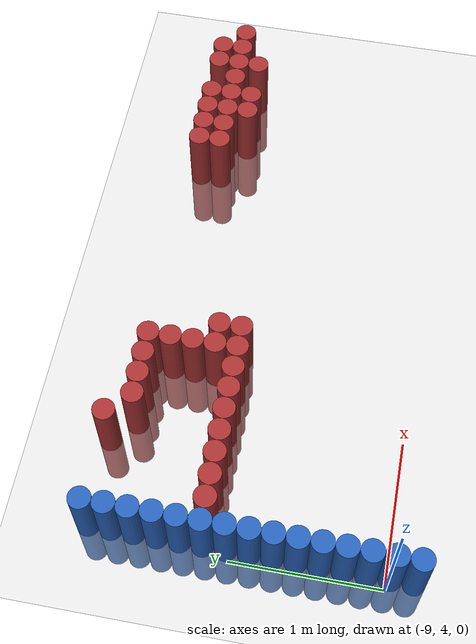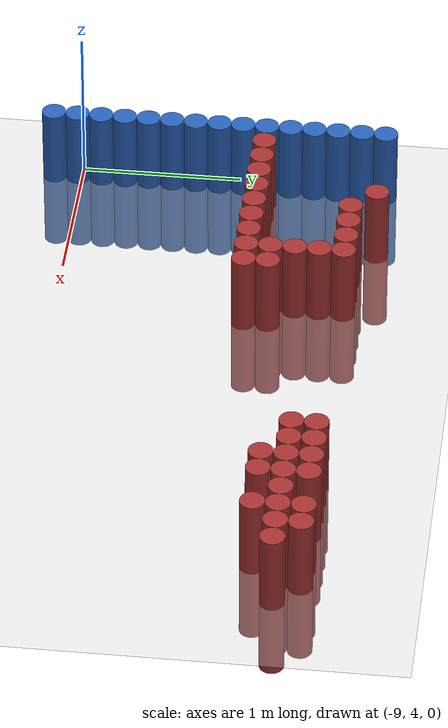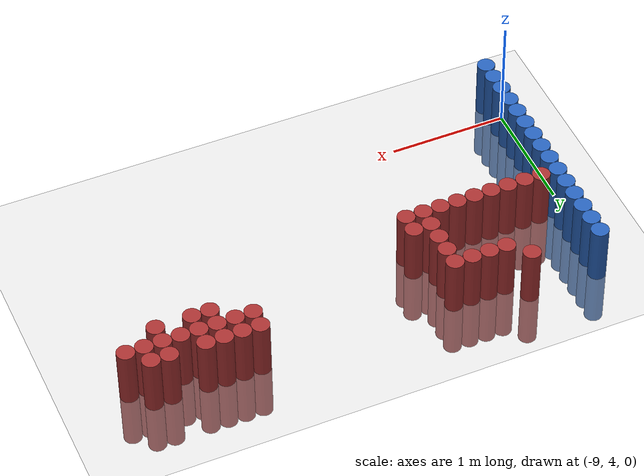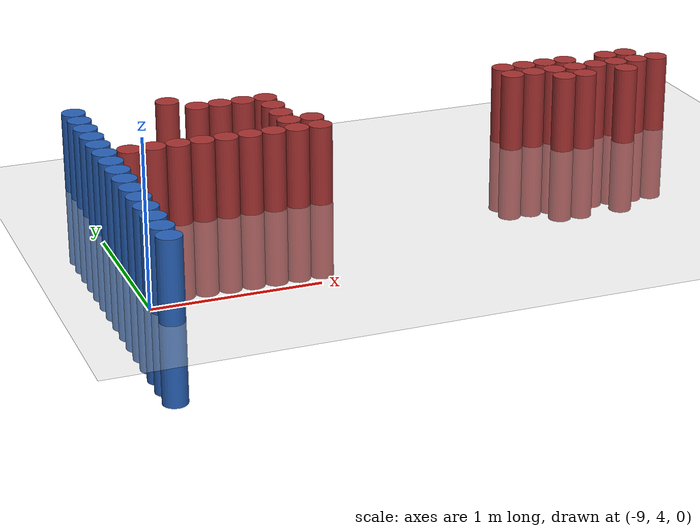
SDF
<sdf version="1.6">
 <world name="default">
  <model name="ground_plane">
   <static>1</static>
   <link name="link">
    <collision name="collision">
     <geometry><plane><normal>0 0 1</normal><size>100 100</size></plane></geometry>
     <surface><friction><ode><mu>100</mu><mu2>50</mu2></ode></friction></surface>
    </collision>
    <visual name="visual">
     <cast_shadows>0</cast_shadows>
     <geometry><plane><normal>0 0 1</normal><size>100 100</size></plane></geometry>
     <material>
      <script><uri>file://media/materials/scripts/gazebo.material</uri><name>Gazebo/Grey</name></script>
     </material>
    </visual>
   </link>
  </model>
  <model name="unit_cylinder_108">
   <static>1</static>
   <pose>-8.925000 3.825000 0.000000 0.000000 0.000000 0.000000</pose>
   <link name="link">
    <inertial>
     <mass>1</mass>
     <inertia><ixx>0.145833</ixx><ixy>0</ixy><ixz>0</ixz><iyy>0.145833</iyy><iyz>0</iyz><izz>0.125</izz></inertia>
    </inertial>
    <collision name="collision">
     <geometry><cylinder><radius>0.075000</radius><length>1</length></cylinder></geometry>
    </collision>
    <visual name="visual">
     <geometry><cylinder><radius>0.075000</radius><length>1</length></cylinder></geometry>
     <material>
      <ambient>0.152000 0.379000 0.720000 1</ambient>
      <diffuse>0.152000 0.379000 0.720000 1</diffuse>
     </material>
     <material>
      <script><name>Gazebo/Grey</name><uri>file://media/materials/scripts/gazebo.material</uri></script>
     </material>
    </visual>
   </link>
  </model>
  <model name="unit_cylinder_110">
   <static>1</static>
   <pose>-8.925000 3.975000 0.000000 0.000000 0.000000 0.000000</pose>
   <link name="link">
    <inertial>
     <mass>1</mass>
     <inertia><ixx>0.145833</ixx><ixy>0</ixy><ixz>0</ixz><iyy>0.145833</iyy><iyz>0</iyz><izz>0.125</izz></inertia>
    </inertial>
    <collision name="collision">
     <geometry><cylinder><radius>0.075000</radius><length>1</length></cylinder></geometry>
    </collision>
    <visual name="visual">
     <geometry><cylinder><radius>0.075000</radius><length>1</length></cylinder></geometry>
     <material>
      <ambient>0.152000 0.379000 0.720000 1</ambient>
      <diffuse>0.152000 0.379000 0.720000 1</diffuse>
     </material>
     <material>
      <script><name>Gazebo/Grey</name><uri>file://media/materials/scripts/gazebo.material</uri></script>
     </material>
    </visual>
   </link>
  </model>
  <model name="unit_cylinder_112">
   <static>1</static>
   <pose>-8.925000 4.125000 0.000000 0.000000 0.000000 0.000000</pose>
   <link name="link">
    <inertial>
     <mass>1</mass>
     <inertia><ixx>0.145833</ixx><ixy>0</ixy><ixz>0</ixz><iyy>0.145833</iyy><iyz>0</iyz><izz>0.125</izz></inertia>
    </inertial>
    <collision name="collision">
     <geometry><cylinder><radius>0.075000</radius><length>1</length></cylinder></geometry>
    </collision>
    <visual name="visual">
     <geometry><cylinder><radius>0.075000</radius><length>1</length></cylinder></geometry>
     <material>
      <ambient>0.152000 0.379000 0.720000 1</ambient>
      <diffuse>0.152000 0.379000 0.720000 1</diffuse>
     </material>
     <material>
      <script><name>Gazebo/Grey</name><uri>file://media/materials/scripts/gazebo.material</uri></script>
     </material>
    </visual>
   </link>
  </model>
  <model name="unit_cylinder_114">
   <static>1</static>
   <pose>-8.925000 4.275000 0.000000 0.000000 0.000000 0.000000</pose>
   <link name="link">
    <inertial>
     <mass>1</mass>
     <inertia><ixx>0.145833</ixx><ixy>0</ixy><ixz>0</ixz><iyy>0.145833</iyy><iyz>0</iyz><izz>0.125</izz></inertia>
    </inertial>
    <collision name="collision">
     <geometry><cylinder><radius>0.075000</radius><length>1</length></cylinder></geometry>
    </collision>
    <visual name="visual">
     <geometry><cylinder><radius>0.075000</radius><length>1</length></cylinder></geometry>
     <material>
      <ambient>0.152000 0.379000 0.720000 1</ambient>
      <diffuse>0.152000 0.379000 0.720000 1</diffuse>
     </material>
     <material>
      <script><name>Gazebo/Grey</name><uri>file://media/materials/scripts/gazebo.material</uri></script>
     </material>
    </visual>
   </link>
  </model>
  <model name="unit_cylinder_116">
   <static>1</static>
   <pose>-8.925000 4.425000 0.000000 0.000000 0.000000 0.000000</pose>
   <link name="link">
    <inertial>
     <mass>1</mass>
     <inertia><ixx>0.145833</ixx><ixy>0</ixy><ixz>0</ixz><iyy>0.145833</iyy><iyz>0</iyz><izz>0.125</izz></inertia>
    </inertial>
    <collision name="collision">
     <geometry><cylinder><radius>0.075000</radius><length>1</length></cylinder></geometry>
    </collision>
    <visual name="visual">
     <geometry><cylinder><radius>0.075000</radius><length>1</length></cylinder></geometry>
     <material>
      <ambient>0.152000 0.379000 0.720000 1</ambient>
      <diffuse>0.152000 0.379000 0.720000 1</diffuse>
     </material>
     <material>
      <script><name>Gazebo/Grey</name><uri>file://media/materials/scripts/gazebo.material</uri></script>
     </material>
    </visual>
   </link>
  </model>
  <model name="unit_cylinder_118">
   <static>1</static>
   <pose>-8.925000 4.575000 0.000000 0.000000 0.000000 0.000000</pose>
   <link name="link">
    <inertial>
     <mass>1</mass>
     <inertia><ixx>0.145833</ixx><ixy>0</ixy><ixz>0</ixz><iyy>0.145833</iyy><iyz>0</iyz><izz>0.125</izz></inertia>
    </inertial>
    <collision name="collision">
     <geometry><cylinder><radius>0.075000</radius><length>1</length></cylinder></geometry>
    </collision>
    <visual name="visual">
     <geometry><cylinder><radius>0.075000</radius><length>1</length></cylinder></geometry>
     <material>
      <ambient>0.152000 0.379000 0.720000 1</ambient>
      <diffuse>0.152000 0.379000 0.720000 1</diffuse>
     </material>
     <material>
      <script><name>Gazebo/Grey</name><uri>file://media/materials/scripts/gazebo.material</uri></script>
     </material>
    </visual>
   </link>
  </model>
  <model name="unit_cylinder_120">
   <static>1</static>
   <pose>-8.925000 4.725000 0.000000 0.000000 0.000000 0.000000</pose>
   <link name="link">
    <inertial>
     <mass>1</mass>
     <inertia><ixx>0.145833</ixx><ixy>0</ixy><ixz>0</ixz><iyy>0.145833</iyy><iyz>0</iyz><izz>0.125</izz></inertia>
    </inertial>
    <collision name="collision">
     <geometry><cylinder><radius>0.075000</radius><length>1</length></cylinder></geometry>
    </collision>
    <visual name="visual">
     <geometry><cylinder><radius>0.075000</radius><length>1</length></cylinder></geometry>
     <material>
      <ambient>0.152000 0.379000 0.720000 1</ambient>
      <diffuse>0.152000 0.379000 0.720000 1</diffuse>
     </material>
     <material>
      <script><name>Gazebo/Grey</name><uri>file://media/materials/scripts/gazebo.material</uri></script>
     </material>
    </visual>
   </link>
  </model>
  <model name="unit_cylinder_122">
   <static>1</static>
   <pose>-8.925000 4.875000 0.000000 0.000000 0.000000 0.000000</pose>
   <link name="link">
    <inertial>
     <mass>1</mass>
     <inertia><ixx>0.145833</ixx><ixy>0</ixy><ixz>0</ixz><iyy>0.145833</iyy><iyz>0</iyz><izz>0.125</izz></inertia>
    </inertial>
    <collision name="collision">
     <geometry><cylinder><radius>0.075000</radius><length>1</length></cylinder></geometry>
    </collision>
    <visual name="visual">
     <geometry><cylinder><radius>0.075000</radius><length>1</length></cylinder></geometry>
     <material>
      <ambient>0.152000 0.379000 0.720000 1</ambient>
      <diffuse>0.152000 0.379000 0.720000 1</diffuse>
     </material>
     <material>
      <script><name>Gazebo/Grey</name><uri>file://media/materials/scripts/gazebo.material</uri></script>
     </material>
    </visual>
   </link>
  </model>
  <model name="unit_cylinder_124">
   <static>1</static>
   <pose>-8.925000 5.025000 0.000000 0.000000 0.000000 0.000000</pose>
   <link name="link">
    <inertial>
     <mass>1</mass>
     <inertia><ixx>0.145833</ixx><ixy>0</ixy><ixz>0</ixz><iyy>0.145833</iyy><iyz>0</iyz><izz>0.125</izz></inertia>
    </inertial>
    <collision name="collision">
     <geometry><cylinder><radius>0.075000</radius><length>1</length></cylinder></geometry>
    </collision>
    <visual name="visual">
     <geometry><cylinder><radius>0.075000</radius><length>1</length></cylinder></geometry>
     <material>
      <ambient>0.152000 0.379000 0.720000 1</ambient>
      <diffuse>0.152000 0.379000 0.720000 1</diffuse>
     </material>
     <material>
      <script><name>Gazebo/Grey</name><uri>file://media/materials/scripts/gazebo.material</uri></script>
     </material>
    </visual>
   </link>
  </model>
  <model name="unit_cylinder_125">
   <static>1</static>
   <pose>-8.925000 5.175000 0.000000 0.000000 0.000000 0.000000</pose>
   <link name="link">
    <inertial>
     <mass>1</mass>
     <inertia><ixx>0.145833</ixx><ixy>0</ixy><ixz>0</ixz><iyy>0.145833</iyy><iyz>0</iyz><izz>0.125</izz></inertia>
    </inertial>
    <collision name="collision">
     <geometry><cylinder><radius>0.075000</radius><length>1</length></cylinder></geometry>
    </collision>
    <visual name="visual">
     <geometry><cylinder><radius>0.075000</radius><length>1</length></cylinder></geometry>
     <material>
      <ambient>0.152000 0.379000 0.720000 1</ambient>
      <diffuse>0.152000 0.379000 0.720000 1</diffuse>
     </material>
     <material>
      <script><name>Gazebo/Grey</name><uri>file://media/materials/scripts/gazebo.material</uri></script>
     </material>
    </visual>
   </link>
  </model>
  <model name="unit_cylinder_126">
   <static>1</static>
   <pose>-8.925000 5.325000 0.000000 0.000000 0.000000 0.000000</pose>
   <link name="link">
    <inertial>
     <mass>1</mass>
     <inertia><ixx>0.145833</ixx><ixy>0</ixy><ixz>0</ixz><iyy>0.145833</iyy><iyz>0</iyz><izz>0.125</izz></inertia>
    </inertial>
    <collision name="collision">
     <geometry><cylinder><radius>0.075000</radius><length>1</length></cylinder></geometry>
    </collision>
    <visual name="visual">
     <geometry><cylinder><radius>0.075000</radius><length>1</length></cylinder></geometry>
     <material>
      <ambient>0.152000 0.379000 0.720000 1</ambient>
      <diffuse>0.152000 0.379000 0.720000 1</diffuse>
     </material>
     <material>
      <script><name>Gazebo/Grey</name><uri>file://media/materials/scripts/gazebo.material</uri></script>
     </material>
    </visual>
   </link>
  </model>
  <model name="unit_cylinder_127">
   <static>1</static>
   <pose>-8.925000 5.475000 0.000000 0.000000 0.000000 0.000000</pose>
   <link name="link">
    <inertial>
     <mass>1</mass>
     <inertia><ixx>0.145833</ixx><ixy>0</ixy><ixz>0</ixz><iyy>0.145833</iyy><iyz>0</iyz><izz>0.125</izz></inertia>
    </inertial>
    <collision name="collision">
     <geometry><cylinder><radius>0.075000</radius><length>1</length></cylinder></geometry>
    </collision>
    <visual name="visual">
     <geometry><cylinder><radius>0.075000</radius><length>1</length></cylinder></geometry>
     <material>
      <ambient>0.152000 0.379000 0.720000 1</ambient>
      <diffuse>0.152000 0.379000 0.720000 1</diffuse>
     </material>
     <material>
      <script><name>Gazebo/Grey</name><uri>file://media/materials/scripts/gazebo.material</uri></script>
     </material>
    </visual>
   </link>
  </model>
  <model name="unit_cylinder_128">
   <static>1</static>
   <pose>-8.925000 5.625000 0.000000 0.000000 0.000000 0.000000</pose>
   <link name="link">
    <inertial>
     <mass>1</mass>
     <inertia><ixx>0.145833</ixx><ixy>0</ixy><ixz>0</ixz><iyy>0.145833</iyy><iyz>0</iyz><izz>0.125</izz></inertia>
    </inertial>
    <collision name="collision">
     <geometry><cylinder><radius>0.075000</radius><length>1</length></cylinder></geometry>
    </collision>
    <visual name="visual">
     <geometry><cylinder><radius>0.075000</radius><length>1</length></cylinder></geometry>
     <material>
      <ambient>0.152000 0.379000 0.720000 1</ambient>
      <diffuse>0.152000 0.379000 0.720000 1</diffuse>
     </material>
     <material>
      <script><name>Gazebo/Grey</name><uri>file://media/materials/scripts/gazebo.material</uri></script>
     </material>
    </visual>
   </link>
  </model>
  <model name="unit_cylinder_129">
   <static>1</static>
   <pose>-8.925000 5.775000 0.000000 0.000000 0.000000 0.000000</pose>
   <link name="link">
    <inertial>
     <mass>1</mass>
     <inertia><ixx>0.145833</ixx><ixy>0</ixy><ixz>0</ixz><iyy>0.145833</iyy><iyz>0</iyz><izz>0.125</izz></inertia>
    </inertial>
    <collision name="collision">
     <geometry><cylinder><radius>0.075000</radius><length>1</length></cylinder></geometry>
    </collision>
    <visual name="visual">
     <geometry><cylinder><radius>0.075000</radius><length>1</length></cylinder></geometry>
     <material>
      <ambient>0.152000 0.379000 0.720000 1</ambient>
      <diffuse>0.152000 0.379000 0.720000 1</diffuse>
     </material>
     <material>
      <script><name>Gazebo/Grey</name><uri>file://media/materials/scripts/gazebo.material</uri></script>
     </material>
    </visual>
   </link>
  </model>
  <model name="unit_cylinder_130">
   <static>1</static>
   <pose>-8.925000 5.925000 0.000000 0.000000 0.000000 0.000000</pose>
   <link name="link">
    <inertial>
     <mass>1</mass>
     <inertia><ixx>0.145833</ixx><ixy>0</ixy><ixz>0</ixz><iyy>0.145833</iyy><iyz>0</iyz><izz>0.125</izz></inertia>
    </inertial>
    <collision name="collision">
     <geometry><cylinder><radius>0.075000</radius><length>1</length></cylinder></geometry>
    </collision>
    <visual name="visual">
     <geometry><cylinder><radius>0.075000</radius><length>1</length></cylinder></geometry>
     <material>
      <ambient>0.152000 0.379000 0.720000 1</ambient>
      <diffuse>0.152000 0.379000 0.720000 1</diffuse>
     </material>
     <material>
      <script><name>Gazebo/Grey</name><uri>file://media/materials/scripts/gazebo.material</uri></script>
     </material>
    </visual>
   </link>
  </model>
  <model name="unit_cylinder_155">
   <static>1</static>
   <pose>-8.775000 5.175000 0.000000 0.000000 0.000000 0.000000</pose>
   <link name="link">
    <inertial>
     <mass>1</mass>
     <inertia><ixx>0.145833</ixx><ixy>0</ixy><ixz>0</ixz><iyy>0.145833</iyy><iyz>0</iyz><izz>0.125</izz></inertia>
    </inertial>
    <collision name="collision">
     <geometry><cylinder><radius>0.075000</radius><length>1</length></cylinder></geometry>
    </collision>
    <visual name="visual">
     <geometry><cylinder><radius>0.075000</radius><length>1</length></cylinder></geometry>
     <material>
      <ambient>0.648000 0.192000 0.192000 1</ambient>
      <diffuse>0.648000 0.192000 0.192000 1</diffuse>
     </material>
     <material>
      <script><name>Gazebo/Grey</name><uri>file://media/materials/scripts/gazebo.material</uri></script>
     </material>
    </visual>
   </link>
  </model>
  <model name="unit_cylinder_157">
   <static>1</static>
   <pose>-8.625000 5.175000 0.000000 0.000000 0.000000 0.000000</pose>
   <link name="link">
    <inertial>
     <mass>1</mass>
     <inertia><ixx>0.145833</ixx><ixy>0</ixy><ixz>0</ixz><iyy>0.145833</iyy><iyz>0</iyz><izz>0.125</izz></inertia>
    </inertial>
    <collision name="collision">
     <geometry><cylinder><radius>0.075000</radius><length>1</length></cylinder></geometry>
    </collision>
    <visual name="visual">
     <geometry><cylinder><radius>0.075000</radius><length>1</length></cylinder></geometry>
     <material>
      <ambient>0.648000 0.192000 0.192000 1</ambient>
      <diffuse>0.648000 0.192000 0.192000 1</diffuse>
     </material>
     <material>
      <script><name>Gazebo/Grey</name><uri>file://media/materials/scripts/gazebo.material</uri></script>
     </material>
    </visual>
   </link>
  </model>
  <model name="unit_cylinder_159">
   <static>1</static>
   <pose>-8.475000 5.175000 0.000000 0.000000 0.000000 0.000000</pose>
   <link name="link">
    <inertial>
     <mass>1</mass>
     <inertia><ixx>0.145833</ixx><ixy>0</ixy><ixz>0</ixz><iyy>0.145833</iyy><iyz>0</iyz><izz>0.125</izz></inertia>
    </inertial>
    <collision name="collision">
     <geometry><cylinder><radius>0.075000</radius><length>1</length></cylinder></geometry>
    </collision>
    <visual name="visual">
     <geometry><cylinder><radius>0.075000</radius><length>1</length></cylinder></geometry>
     <material>
      <ambient>0.648000 0.192000 0.192000 1</ambient>
      <diffuse>0.648000 0.192000 0.192000 1</diffuse>
     </material>
     <material>
      <script><name>Gazebo/Grey</name><uri>file://media/materials/scripts/gazebo.material</uri></script>
     </material>
    </visual>
   </link>
  </model>
  <model name="unit_cylinder_161">
   <static>1</static>
   <pose>-8.325000 5.175000 0.000000 0.000000 0.000000 0.000000</pose>
   <link name="link">
    <inertial>
     <mass>1</mass>
     <inertia><ixx>0.145833</ixx><ixy>0</ixy><ixz>0</ixz><iyy>0.145833</iyy><iyz>0</iyz><izz>0.125</izz></inertia>
    </inertial>
    <collision name="collision">
     <geometry><cylinder><radius>0.075000</radius><length>1</length></cylinder></geometry>
    </collision>
    <visual name="visual">
     <geometry><cylinder><radius>0.075000</radius><length>1</length></cylinder></geometry>
     <material>
      <ambient>0.648000 0.192000 0.192000 1</ambient>
      <diffuse>0.648000 0.192000 0.192000 1</diffuse>
     </material>
     <material>
      <script><name>Gazebo/Grey</name><uri>file://media/materials/scripts/gazebo.material</uri></script>
     </material>
    </visual>
   </link>
  </model>
  <model name="unit_cylinder_162">
   <static>1</static>
   <pose>-8.325000 5.925000 0.000000 0.000000 0.000000 0.000000</pose>
   <link name="link">
    <inertial>
     <mass>1</mass>
     <inertia><ixx>0.145833</ixx><ixy>0</ixy><ixz>0</ixz><iyy>0.145833</iyy><iyz>0</iyz><izz>0.125</izz></inertia>
    </inertial>
    <collision name="collision">
     <geometry><cylinder><radius>0.075000</radius><length>1</length></cylinder></geometry>
    </collision>
    <visual name="visual">
     <geometry><cylinder><radius>0.075000</radius><length>1</length></cylinder></geometry>
     <material>
      <ambient>0.648000 0.192000 0.192000 1</ambient>
      <diffuse>0.648000 0.192000 0.192000 1</diffuse>
     </material>
     <material>
      <script><name>Gazebo/Grey</name><uri>file://media/materials/scripts/gazebo.material</uri></script>
     </material>
    </visual>
   </link>
  </model>
  <model name="unit_cylinder_182">
   <static>1</static>
   <pose>-8.175000 5.175000 0.000000 0.000000 0.000000 0.000000</pose>
   <link name="link">
    <inertial>
     <mass>1</mass>
     <inertia><ixx>0.145833</ixx><ixy>0</ixy><ixz>0</ixz><iyy>0.145833</iyy><iyz>0</iyz><izz>0.125</izz></inertia>
    </inertial>
    <collision name="collision">
     <geometry><cylinder><radius>0.075000</radius><length>1</length></cylinder></geometry>
    </collision>
    <visual name="visual">
     <geometry><cylinder><radius>0.075000</radius><length>1</length></cylinder></geometry>
     <material>
      <ambient>0.648000 0.192000 0.192000 1</ambient>
      <diffuse>0.648000 0.192000 0.192000 1</diffuse>
     </material>
     <material>
      <script><name>Gazebo/Grey</name><uri>file://media/materials/scripts/gazebo.material</uri></script>
     </material>
    </visual>
   </link>
  </model>
  <model name="unit_cylinder_183">
   <static>1</static>
   <pose>-8.175000 5.775000 0.000000 0.000000 0.000000 0.000000</pose>
   <link name="link">
    <inertial>
     <mass>1</mass>
     <inertia><ixx>0.145833</ixx><ixy>0</ixy><ixz>0</ixz><iyy>0.145833</iyy><iyz>0</iyz><izz>0.125</izz></inertia>
    </inertial>
    <collision name="collision">
     <geometry><cylinder><radius>0.075000</radius><length>1</length></cylinder></geometry>
    </collision>
    <visual name="visual">
     <geometry><cylinder><radius>0.075000</radius><length>1</length></cylinder></geometry>
     <material>
      <ambient>0.648000 0.192000 0.192000 1</ambient>
      <diffuse>0.648000 0.192000 0.192000 1</diffuse>
     </material>
     <material>
      <script><name>Gazebo/Grey</name><uri>file://media/materials/scripts/gazebo.material</uri></script>
     </material>
    </visual>
   </link>
  </model>
  <model name="unit_cylinder_188">
   <static>1</static>
   <pose>-8.025000 5.175000 0.000000 0.000000 0.000000 0.000000</pose>
   <link name="link">
    <inertial>
     <mass>1</mass>
     <inertia><ixx>0.145833</ixx><ixy>0</ixy><ixz>0</ixz><iyy>0.145833</iyy><iyz>0</iyz><izz>0.125</izz></inertia>
    </inertial>
    <collision name="collision">
     <geometry><cylinder><radius>0.075000</radius><length>1</length></cylinder></geometry>
    </collision>
    <visual name="visual">
     <geometry><cylinder><radius>0.075000</radius><length>1</length></cylinder></geometry>
     <material>
      <ambient>0.648000 0.192000 0.192000 1</ambient>
      <diffuse>0.648000 0.192000 0.192000 1</diffuse>
     </material>
     <material>
      <script><name>Gazebo/Grey</name><uri>file://media/materials/scripts/gazebo.material</uri></script>
     </material>
    </visual>
   </link>
  </model>
  <model name="unit_cylinder_189">
   <static>1</static>
   <pose>-8.025000 5.775000 0.000000 0.000000 0.000000 0.000000</pose>
   <link name="link">
    <inertial>
     <mass>1</mass>
     <inertia><ixx>0.145833</ixx><ixy>0</ixy><ixz>0</ixz><iyy>0.145833</iyy><iyz>0</iyz><izz>0.125</izz></inertia>
    </inertial>
    <collision name="collision">
     <geometry><cylinder><radius>0.075000</radius><length>1</length></cylinder></geometry>
    </collision>
    <visual name="visual">
     <geometry><cylinder><radius>0.075000</radius><length>1</length></cylinder></geometry>
     <material>
      <ambient>0.648000 0.192000 0.192000 1</ambient>
      <diffuse>0.648000 0.192000 0.192000 1</diffuse>
     </material>
     <material>
      <script><name>Gazebo/Grey</name><uri>file://media/materials/scripts/gazebo.material</uri></script>
     </material>
    </visual>
   </link>
  </model>
  <model name="unit_cylinder_192">
   <static>1</static>
   <pose>-7.875000 5.175000 0.000000 0.000000 0.000000 0.000000</pose>
   <link name="link">
    <inertial>
     <mass>1</mass>
     <inertia><ixx>0.145833</ixx><ixy>0</ixy><ixz>0</ixz><iyy>0.145833</iyy><iyz>0</iyz><izz>0.125</izz></inertia>
    </inertial>
    <collision name="collision">
     <geometry><cylinder><radius>0.075000</radius><length>1</length></cylinder></geometry>
    </collision>
    <visual name="visual">
     <geometry><cylinder><radius>0.075000</radius><length>1</length></cylinder></geometry>
     <material>
      <ambient>0.648000 0.192000 0.192000 1</ambient>
      <diffuse>0.648000 0.192000 0.192000 1</diffuse>
     </material>
     <material>
      <script><name>Gazebo/Grey</name><uri>file://media/materials/scripts/gazebo.material</uri></script>
     </material>
    </visual>
   </link>
  </model>
  <model name="unit_cylinder_193">
   <static>1</static>
   <pose>-7.875000 5.775000 0.000000 0.000000 0.000000 0.000000</pose>
   <link name="link">
    <inertial>
     <mass>1</mass>
     <inertia><ixx>0.145833</ixx><ixy>0</ixy><ixz>0</ixz><iyy>0.145833</iyy><iyz>0</iyz><izz>0.125</izz></inertia>
    </inertial>
    <collision name="collision">
     <geometry><cylinder><radius>0.075000</radius><length>1</length></cylinder></geometry>
    </collision>
    <visual name="visual">
     <geometry><cylinder><radius>0.075000</radius><length>1</length></cylinder></geometry>
     <material>
      <ambient>0.648000 0.192000 0.192000 1</ambient>
      <diffuse>0.648000 0.192000 0.192000 1</diffuse>
     </material>
     <material>
      <script><name>Gazebo/Grey</name><uri>file://media/materials/scripts/gazebo.material</uri></script>
     </material>
    </visual>
   </link>
  </model>
  <model name="unit_cylinder_196">
   <static>1</static>
   <pose>-7.725000 5.175000 0.000000 0.000000 0.000000 0.000000</pose>
   <link name="link">
    <inertial>
     <mass>1</mass>
     <inertia><ixx>0.145833</ixx><ixy>0</ixy><ixz>0</ixz><iyy>0.145833</iyy><iyz>0</iyz><izz>0.125</izz></inertia>
    </inertial>
    <collision name="collision">
     <geometry><cylinder><radius>0.075000</radius><length>1</length></cylinder></geometry>
    </collision>
    <visual name="visual">
     <geometry><cylinder><radius>0.075000</radius><length>1</length></cylinder></geometry>
     <material>
      <ambient>0.648000 0.192000 0.192000 1</ambient>
      <diffuse>0.648000 0.192000 0.192000 1</diffuse>
     </material>
     <material>
      <script><name>Gazebo/Grey</name><uri>file://media/materials/scripts/gazebo.material</uri></script>
     </material>
    </visual>
   </link>
  </model>
  <model name="unit_cylinder_197">
   <static>1</static>
   <pose>-7.725000 5.325000 0.000000 0.000000 0.000000 0.000000</pose>
   <link name="link">
    <inertial>
     <mass>1</mass>
     <inertia><ixx>0.145833</ixx><ixy>0</ixy><ixz>0</ixz><iyy>0.145833</iyy><iyz>0</iyz><izz>0.125</izz></inertia>
    </inertial>
    <collision name="collision">
     <geometry><cylinder><radius>0.075000</radius><length>1</length></cylinder></geometry>
    </collision>
    <visual name="visual">
     <geometry><cylinder><radius>0.075000</radius><length>1</length></cylinder></geometry>
     <material>
      <ambient>0.648000 0.192000 0.192000 1</ambient>
      <diffuse>0.648000 0.192000 0.192000 1</diffuse>
     </material>
     <material>
      <script><name>Gazebo/Grey</name><uri>file://media/materials/scripts/gazebo.material</uri></script>
     </material>
    </visual>
   </link>
  </model>
  <model name="unit_cylinder_198">
   <static>1</static>
   <pose>-7.725000 5.475000 0.000000 0.000000 0.000000 0.000000</pose>
   <link name="link">
    <inertial>
     <mass>1</mass>
     <inertia><ixx>0.145833</ixx><ixy>0</ixy><ixz>0</ixz><iyy>0.145833</iyy><iyz>0</iyz><izz>0.125</izz></inertia>
    </inertial>
    <collision name="collision">
     <geometry><cylinder><radius>0.075000</radius><length>1</length></cylinder></geometry>
    </collision>
    <visual name="visual">
     <geometry><cylinder><radius>0.075000</radius><length>1</length></cylinder></geometry>
     <material>
      <ambient>0.648000 0.192000 0.192000 1</ambient>
      <diffuse>0.648000 0.192000 0.192000 1</diffuse>
     </material>
     <material>
      <script><name>Gazebo/Grey</name><uri>file://media/materials/scripts/gazebo.material</uri></script>
     </material>
    </visual>
   </link>
  </model>
  <model name="unit_cylinder_199">
   <static>1</static>
   <pose>-7.725000 5.625000 0.000000 0.000000 0.000000 0.000000</pose>
   <link name="link">
    <inertial>
     <mass>1</mass>
     <inertia><ixx>0.145833</ixx><ixy>0</ixy><ixz>0</ixz><iyy>0.145833</iyy><iyz>0</iyz><izz>0.125</izz></inertia>
    </inertial>
    <collision name="collision">
     <geometry><cylinder><radius>0.075000</radius><length>1</length></cylinder></geometry>
    </collision>
    <visual name="visual">
     <geometry><cylinder><radius>0.075000</radius><length>1</length></cylinder></geometry>
     <material>
      <ambient>0.648000 0.192000 0.192000 1</ambient>
      <diffuse>0.648000 0.192000 0.192000 1</diffuse>
     </material>
     <material>
      <script><name>Gazebo/Grey</name><uri>file://media/materials/scripts/gazebo.material</uri></script>
     </material>
    </visual>
   </link>
  </model>
  <model name="unit_cylinder_200">
   <static>1</static>
   <pose>-7.725000 5.775000 0.000000 0.000000 0.000000 0.000000</pose>
   <link name="link">
    <inertial>
     <mass>1</mass>
     <inertia><ixx>0.145833</ixx><ixy>0</ixy><ixz>0</ixz><iyy>0.145833</iyy><iyz>0</iyz><izz>0.125</izz></inertia>
    </inertial>
    <collision name="collision">
     <geometry><cylinder><radius>0.075000</radius><length>1</length></cylinder></geometry>
    </collision>
    <visual name="visual">
     <geometry><cylinder><radius>0.075000</radius><length>1</length></cylinder></geometry>
     <material>
      <ambient>0.648000 0.192000 0.192000 1</ambient>
      <diffuse>0.648000 0.192000 0.192000 1</diffuse>
     </material>
     <material>
      <script><name>Gazebo/Grey</name><uri>file://media/materials/scripts/gazebo.material</uri></script>
     </material>
    </visual>
   </link>
  </model>
  <model name="unit_cylinder_203">
   <static>1</static>
   <pose>-7.575000 5.175000 0.000000 0.000000 0.000000 0.000000</pose>
   <link name="link">
    <inertial>
     <mass>1</mass>
     <inertia><ixx>0.145833</ixx><ixy>0</ixy><ixz>0</ixz><iyy>0.145833</iyy><iyz>0</iyz><izz>0.125</izz></inertia>
    </inertial>
    <collision name="collision">
     <geometry><cylinder><radius>0.075000</radius><length>1</length></cylinder></geometry>
    </collision>
    <visual name="visual">
     <geometry><cylinder><radius>0.075000</radius><length>1</length></cylinder></geometry>
     <material>
      <ambient>0.648000 0.192000 0.192000 1</ambient>
      <diffuse>0.648000 0.192000 0.192000 1</diffuse>
     </material>
     <material>
      <script><name>Gazebo/Grey</name><uri>file://media/materials/scripts/gazebo.material</uri></script>
     </material>
    </visual>
   </link>
  </model>
  <model name="unit_cylinder_204">
   <static>1</static>
   <pose>-7.575000 5.325000 0.000000 0.000000 0.000000 0.000000</pose>
   <link name="link">
    <inertial>
     <mass>1</mass>
     <inertia><ixx>0.145833</ixx><ixy>0</ixy><ixz>0</ixz><iyy>0.145833</iyy><iyz>0</iyz><izz>0.125</izz></inertia>
    </inertial>
    <collision name="collision">
     <geometry><cylinder><radius>0.075000</radius><length>1</length></cylinder></geometry>
    </collision>
    <visual name="visual">
     <geometry><cylinder><radius>0.075000</radius><length>1</length></cylinder></geometry>
     <material>
      <ambient>0.648000 0.192000 0.192000 1</ambient>
      <diffuse>0.648000 0.192000 0.192000 1</diffuse>
     </material>
     <material>
      <script><name>Gazebo/Grey</name><uri>file://media/materials/scripts/gazebo.material</uri></script>
     </material>
    </visual>
   </link>
  </model>
  <model name="unit_cylinder_238">
   <static>1</static>
   <pose>-6.075000 5.625000 0.000000 0.000000 0.000000 0.000000</pose>
   <link name="link">
    <inertial>
     <mass>1</mass>
     <inertia><ixx>0.145833</ixx><ixy>0</ixy><ixz>0</ixz><iyy>0.145833</iyy><iyz>0</iyz><izz>0.125</izz></inertia>
    </inertial>
    <collision name="collision">
     <geometry><cylinder><radius>0.075000</radius><length>1</length></cylinder></geometry>
    </collision>
    <visual name="visual">
     <geometry><cylinder><radius>0.075000</radius><length>1</length></cylinder></geometry>
     <material>
      <ambient>0.648000 0.192000 0.192000 1</ambient>
      <diffuse>0.648000 0.192000 0.192000 1</diffuse>
     </material>
     <material>
      <script><name>Gazebo/Grey</name><uri>file://media/materials/scripts/gazebo.material</uri></script>
     </material>
    </visual>
   </link>
  </model>
  <model name="unit_cylinder_239">
   <static>1</static>
   <pose>-6.075000 5.775000 0.000000 0.000000 0.000000 0.000000</pose>
   <link name="link">
    <inertial>
     <mass>1</mass>
     <inertia><ixx>0.145833</ixx><ixy>0</ixy><ixz>0</ixz><iyy>0.145833</iyy><iyz>0</iyz><izz>0.125</izz></inertia>
    </inertial>
    <collision name="collision">
     <geometry><cylinder><radius>0.075000</radius><length>1</length></cylinder></geometry>
    </collision>
    <visual name="visual">
     <geometry><cylinder><radius>0.075000</radius><length>1</length></cylinder></geometry>
     <material>
      <ambient>0.648000 0.192000 0.192000 1</ambient>
      <diffuse>0.648000 0.192000 0.192000 1</diffuse>
     </material>
     <material>
      <script><name>Gazebo/Grey</name><uri>file://media/materials/scripts/gazebo.material</uri></script>
     </material>
    </visual>
   </link>
  </model>
  <model name="unit_cylinder_244">
   <static>1</static>
   <pose>-5.925000 5.625000 0.000000 0.000000 0.000000 0.000000</pose>
   <link name="link">
    <inertial>
     <mass>1</mass>
     <inertia><ixx>0.145833</ixx><ixy>0</ixy><ixz>0</ixz><iyy>0.145833</iyy><iyz>0</iyz><izz>0.125</izz></inertia>
    </inertial>
    <collision name="collision">
     <geometry><cylinder><radius>0.075000</radius><length>1</length></cylinder></geometry>
    </collision>
    <visual name="visual">
     <geometry><cylinder><radius>0.075000</radius><length>1</length></cylinder></geometry>
     <material>
      <ambient>0.648000 0.192000 0.192000 1</ambient>
      <diffuse>0.648000 0.192000 0.192000 1</diffuse>
     </material>
     <material>
      <script><name>Gazebo/Grey</name><uri>file://media/materials/scripts/gazebo.material</uri></script>
     </material>
    </visual>
   </link>
  </model>
  <model name="unit_cylinder_245">
   <static>1</static>
   <pose>-5.925000 5.775000 0.000000 0.000000 0.000000 0.000000</pose>
   <link name="link">
    <inertial>
     <mass>1</mass>
     <inertia><ixx>0.145833</ixx><ixy>0</ixy><ixz>0</ixz><iyy>0.145833</iyy><iyz>0</iyz><izz>0.125</izz></inertia>
    </inertial>
    <collision name="collision">
     <geometry><cylinder><radius>0.075000</radius><length>1</length></cylinder></geometry>
    </collision>
    <visual name="visual">
     <geometry><cylinder><radius>0.075000</radius><length>1</length></cylinder></geometry>
     <material>
      <ambient>0.648000 0.192000 0.192000 1</ambient>
      <diffuse>0.648000 0.192000 0.192000 1</diffuse>
     </material>
     <material>
      <script><name>Gazebo/Grey</name><uri>file://media/materials/scripts/gazebo.material</uri></script>
     </material>
    </visual>
   </link>
  </model>
  <model name="unit_cylinder_249">
   <static>1</static>
   <pose>-5.775000 5.475000 0.000000 0.000000 0.000000 0.000000</pose>
   <link name="link">
    <inertial>
     <mass>1</mass>
     <inertia><ixx>0.145833</ixx><ixy>0</ixy><ixz>0</ixz><iyy>0.145833</iyy><iyz>0</iyz><izz>0.125</izz></inertia>
    </inertial>
    <collision name="collision">
     <geometry><cylinder><radius>0.075000</radius><length>1</length></cylinder></geometry>
    </collision>
    <visual name="visual">
     <geometry><cylinder><radius>0.075000</radius><length>1</length></cylinder></geometry>
     <material>
      <ambient>0.648000 0.192000 0.192000 1</ambient>
      <diffuse>0.648000 0.192000 0.192000 1</diffuse>
     </material>
     <material>
      <script><name>Gazebo/Grey</name><uri>file://media/materials/scripts/gazebo.material</uri></script>
     </material>
    </visual>
   </link>
  </model>
  <model name="unit_cylinder_250">
   <static>1</static>
   <pose>-5.775000 5.625000 0.000000 0.000000 0.000000 0.000000</pose>
   <link name="link">
    <inertial>
     <mass>1</mass>
     <inertia><ixx>0.145833</ixx><ixy>0</ixy><ixz>0</ixz><iyy>0.145833</iyy><iyz>0</iyz><izz>0.125</izz></inertia>
    </inertial>
    <collision name="collision">
     <geometry><cylinder><radius>0.075000</radius><length>1</length></cylinder></geometry>
    </collision>
    <visual name="visual">
     <geometry><cylinder><radius>0.075000</radius><length>1</length></cylinder></geometry>
     <material>
      <ambient>0.648000 0.192000 0.192000 1</ambient>
      <diffuse>0.648000 0.192000 0.192000 1</diffuse>
     </material>
     <material>
      <script><name>Gazebo/Grey</name><uri>file://media/materials/scripts/gazebo.material</uri></script>
     </material>
    </visual>
   </link>
  </model>
  <model name="unit_cylinder_251">
   <static>1</static>
   <pose>-5.775000 5.775000 0.000000 0.000000 0.000000 0.000000</pose>
   <link name="link">
    <inertial>
     <mass>1</mass>
     <inertia><ixx>0.145833</ixx><ixy>0</ixy><ixz>0</ixz><iyy>0.145833</iyy><iyz>0</iyz><izz>0.125</izz></inertia>
    </inertial>
    <collision name="collision">
     <geometry><cylinder><radius>0.075000</radius><length>1</length></cylinder></geometry>
    </collision>
    <visual name="visual">
     <geometry><cylinder><radius>0.075000</radius><length>1</length></cylinder></geometry>
     <material>
      <ambient>0.648000 0.192000 0.192000 1</ambient>
      <diffuse>0.648000 0.192000 0.192000 1</diffuse>
     </material>
     <material>
      <script><name>Gazebo/Grey</name><uri>file://media/materials/scripts/gazebo.material</uri></script>
     </material>
    </visual>
   </link>
  </model>
  <model name="unit_cylinder_255">
   <static>1</static>
   <pose>-5.625000 5.475000 0.000000 0.000000 0.000000 0.000000</pose>
   <link name="link">
    <inertial>
     <mass>1</mass>
     <inertia><ixx>0.145833</ixx><ixy>0</ixy><ixz>0</ixz><iyy>0.145833</iyy><iyz>0</iyz><izz>0.125</izz></inertia>
    </inertial>
    <collision name="collision">
     <geometry><cylinder><radius>0.075000</radius><length>1</length></cylinder></geometry>
    </collision>
    <visual name="visual">
     <geometry><cylinder><radius>0.075000</radius><length>1</length></cylinder></geometry>
     <material>
      <ambient>0.648000 0.192000 0.192000 1</ambient>
      <diffuse>0.648000 0.192000 0.192000 1</diffuse>
     </material>
     <material>
      <script><name>Gazebo/Grey</name><uri>file://media/materials/scripts/gazebo.material</uri></script>
     </material>
    </visual>
   </link>
  </model>
  <model name="unit_cylinder_256">
   <static>1</static>
   <pose>-5.625000 5.625000 0.000000 0.000000 0.000000 0.000000</pose>
   <link name="link">
    <inertial>
     <mass>1</mass>
     <inertia><ixx>0.145833</ixx><ixy>0</ixy><ixz>0</ixz><iyy>0.145833</iyy><iyz>0</iyz><izz>0.125</izz></inertia>
    </inertial>
    <collision name="collision">
     <geometry><cylinder><radius>0.075000</radius><length>1</length></cylinder></geometry>
    </collision>
    <visual name="visual">
     <geometry><cylinder><radius>0.075000</radius><length>1</length></cylinder></geometry>
     <material>
      <ambient>0.648000 0.192000 0.192000 1</ambient>
      <diffuse>0.648000 0.192000 0.192000 1</diffuse>
     </material>
     <material>
      <script><name>Gazebo/Grey</name><uri>file://media/materials/scripts/gazebo.material</uri></script>
     </material>
    </visual>
   </link>
  </model>
  <model name="unit_cylinder_257">
   <static>1</static>
   <pose>-5.625000 5.775000 0.000000 0.000000 0.000000 0.000000</pose>
   <link name="link">
    <inertial>
     <mass>1</mass>
     <inertia><ixx>0.145833</ixx><ixy>0</ixy><ixz>0</ixz><iyy>0.145833</iyy><iyz>0</iyz><izz>0.125</izz></inertia>
    </inertial>
    <collision name="collision">
     <geometry><cylinder><radius>0.075000</radius><length>1</length></cylinder></geometry>
    </collision>
    <visual name="visual">
     <geometry><cylinder><radius>0.075000</radius><length>1</length></cylinder></geometry>
     <material>
      <ambient>0.648000 0.192000 0.192000 1</ambient>
      <diffuse>0.648000 0.192000 0.192000 1</diffuse>
     </material>
     <material>
      <script><name>Gazebo/Grey</name><uri>file://media/materials/scripts/gazebo.material</uri></script>
     </material>
    </visual>
   </link>
  </model>
  <model name="unit_cylinder_262">
   <static>1</static>
   <pose>-5.475000 5.625000 0.000000 0.000000 0.000000 0.000000</pose>
   <link name="link">
    <inertial>
     <mass>1</mass>
     <inertia><ixx>0.145833</ixx><ixy>0</ixy><ixz>0</ixz><iyy>0.145833</iyy><iyz>0</iyz><izz>0.125</izz></inertia>
    </inertial>
    <collision name="collision">
     <geometry><cylinder><radius>0.075000</radius><length>1</length></cylinder></geometry>
    </collision>
    <visual name="visual">
     <geometry><cylinder><radius>0.075000</radius><length>1</length></cylinder></geometry>
     <material>
      <ambient>0.648000 0.192000 0.192000 1</ambient>
      <diffuse>0.648000 0.192000 0.192000 1</diffuse>
     </material>
     <material>
      <script><name>Gazebo/Grey</name><uri>file://media/materials/scripts/gazebo.material</uri></script>
     </material>
    </visual>
   </link>
  </model>
  <model name="unit_cylinder_268">
   <static>1</static>
   <pose>-5.325000 5.475000 0.000000 0.000000 0.000000 0.000000</pose>
   <link name="link">
    <inertial>
     <mass>1</mass>
     <inertia><ixx>0.145833</ixx><ixy>0</ixy><ixz>0</ixz><iyy>0.145833</iyy><iyz>0</iyz><izz>0.125</izz></inertia>
    </inertial>
    <collision name="collision">
     <geometry><cylinder><radius>0.075000</radius><length>1</length></cylinder></geometry>
    </collision>
    <visual name="visual">
     <geometry><cylinder><radius>0.075000</radius><length>1</length></cylinder></geometry>
     <material>
      <ambient>0.648000 0.192000 0.192000 1</ambient>
      <diffuse>0.648000 0.192000 0.192000 1</diffuse>
     </material>
     <material>
      <script><name>Gazebo/Grey</name><uri>file://media/materials/scripts/gazebo.material</uri></script>
     </material>
    </visual>
   </link>
  </model>
  <model name="unit_cylinder_269">
   <static>1</static>
   <pose>-5.325000 5.625000 0.000000 0.000000 0.000000 0.000000</pose>
   <link name="link">
    <inertial>
     <mass>1</mass>
     <inertia><ixx>0.145833</ixx><ixy>0</ixy><ixz>0</ixz><iyy>0.145833</iyy><iyz>0</iyz><izz>0.125</izz></inertia>
    </inertial>
    <collision name="collision">
     <geometry><cylinder><radius>0.075000</radius><length>1</length></cylinder></geometry>
    </collision>
    <visual name="visual">
     <geometry><cylinder><radius>0.075000</radius><length>1</length></cylinder></geometry>
     <material>
      <ambient>0.648000 0.192000 0.192000 1</ambient>
      <diffuse>0.648000 0.192000 0.192000 1</diffuse>
     </material>
     <material>
      <script><name>Gazebo/Grey</name><uri>file://media/materials/scripts/gazebo.material</uri></script>
     </material>
    </visual>
   </link>
  </model>
  <model name="unit_cylinder_270">
   <static>1</static>
   <pose>-5.325000 5.775000 0.000000 0.000000 0.000000 0.000000</pose>
   <link name="link">
    <inertial>
     <mass>1</mass>
     <inertia><ixx>0.145833</ixx><ixy>0</ixy><ixz>0</ixz><iyy>0.145833</iyy><iyz>0</iyz><izz>0.125</izz></inertia>
    </inertial>
    <collision name="collision">
     <geometry><cylinder><radius>0.075000</radius><length>1</length></cylinder></geometry>
    </collision>
    <visual name="visual">
     <geometry><cylinder><radius>0.075000</radius><length>1</length></cylinder></geometry>
     <material>
      <ambient>0.648000 0.192000 0.192000 1</ambient>
      <diffuse>0.648000 0.192000 0.192000 1</diffuse>
     </material>
     <material>
      <script><name>Gazebo/Grey</name><uri>file://media/materials/scripts/gazebo.material</uri></script>
     </material>
    </visual>
   </link>
  </model>
  <model name="unit_cylinder_273">
   <static>1</static>
   <pose>-5.175000 5.625000 0.000000 0.000000 0.000000 0.000000</pose>
   <link name="link">
    <inertial>
     <mass>1</mass>
     <inertia><ixx>0.145833</ixx><ixy>0</ixy><ixz>0</ixz><iyy>0.145833</iyy><iyz>0</iyz><izz>0.125</izz></inertia>
    </inertial>
    <collision name="collision">
     <geometry><cylinder><radius>0.075000</radius><length>1</length></cylinder></geometry>
    </collision>
    <visual name="visual">
     <geometry><cylinder><radius>0.075000</radius><length>1</length></cylinder></geometry>
     <material>
      <ambient>0.648000 0.192000 0.192000 1</ambient>
      <diffuse>0.648000 0.192000 0.192000 1</diffuse>
     </material>
     <material>
      <script><name>Gazebo/Grey</name><uri>file://media/materials/scripts/gazebo.material</uri></script>
     </material>
    </visual>
   </link>
  </model>
  <model name="unit_cylinder_274">
   <static>1</static>
   <pose>-5.175000 5.775000 0.000000 0.000000 0.000000 0.000000</pose>
   <link name="link">
    <inertial>
     <mass>1</mass>
     <inertia><ixx>0.145833</ixx><ixy>0</ixy><ixz>0</ixz><iyy>0.145833</iyy><iyz>0</iyz><izz>0.125</izz></inertia>
    </inertial>
    <collision name="collision">
     <geometry><cylinder><radius>0.075000</radius><length>1</length></cylinder></geometry>
    </collision>
    <visual name="visual">
     <geometry><cylinder><radius>0.075000</radius><length>1</length></cylinder></geometry>
     <material>
      <ambient>0.648000 0.192000 0.192000 1</ambient>
      <diffuse>0.648000 0.192000 0.192000 1</diffuse>
     </material>
     <material>
      <script><name>Gazebo/Grey</name><uri>file://media/materials/scripts/gazebo.material</uri></script>
     </material>
    </visual>
   </link>
  </model>
  <model name="unit_cylinder_278">
   <static>1</static>
   <pose>-5.025000 5.625000 0.000000 0.000000 0.000000 0.000000</pose>
   <link name="link">
    <inertial>
     <mass>1</mass>
     <inertia><ixx>0.145833</ixx><ixy>0</ixy><ixz>0</ixz><iyy>0.145833</iyy><iyz>0</iyz><izz>0.125</izz></inertia>
    </inertial>
    <collision name="collision">
     <geometry><cylinder><radius>0.075000</radius><length>1</length></cylinder></geometry>
    </collision>
    <visual name="visual">
     <geometry><cylinder><radius>0.075000</radius><length>1</length></cylinder></geometry>
     <material>
      <ambient>0.648000 0.192000 0.192000 1</ambient>
      <diffuse>0.648000 0.192000 0.192000 1</diffuse>
     </material>
     <material>
      <script><name>Gazebo/Grey</name><uri>file://media/materials/scripts/gazebo.material</uri></script>
     </material>
    </visual>
   </link>
  </model>
 </world>
</sdf>
